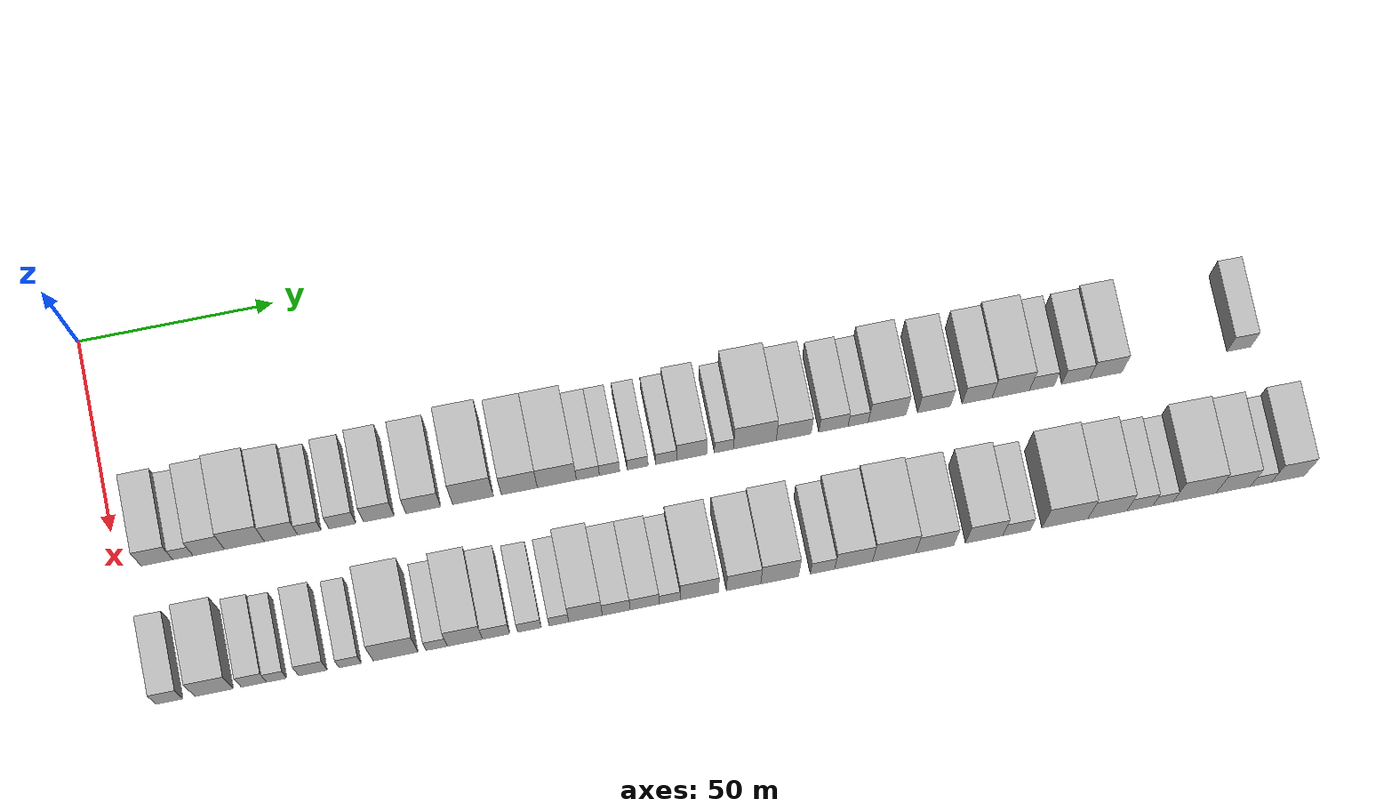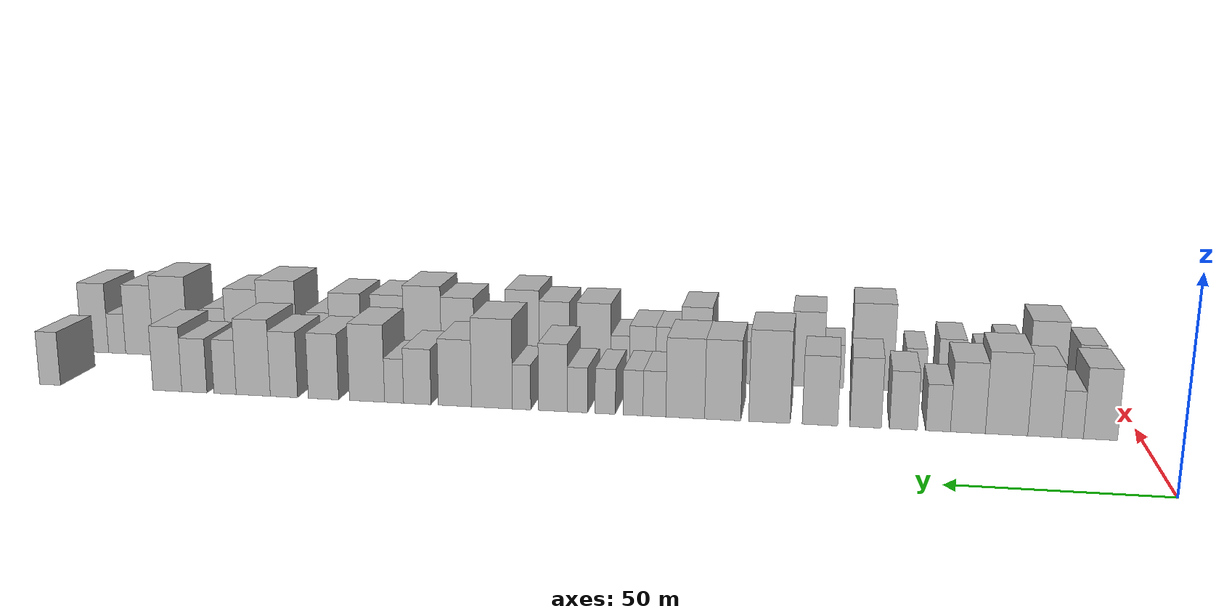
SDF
<sdf version="1.6">
 <world name="default">
  <model name="building_34">
   <static>1</static>
   <pose>50.0000 9.9899 0 0.000000 0.000000 0.000000</pose>
   <link name="link">
    <pose>0 0 9.00 0 0 0</pose>
    <collision name="collision"><geometry><box><size>20.0000 8.0147 18.0000</size></box></geometry></collision>
    <visual name="visual">
     <cast_shadows>0</cast_shadows>
     <geometry><box><size>20.0000 8.0147 18.0000</size></box></geometry>
     <material>
      <script>
       <uri>model://HANNAS_wall/materials/scripts</uri>
       <uri>model://HANNAS_wall/materials/textures</uri>
       <name>vrc/HANNAS_wall</name>
      </script>
     </material>
    </visual>
   </link>
  </model>
  <model name="building_35">
   <static>1</static>
   <pose>50.0000 16.5669 0 0.000000 0.000000 0.000000</pose>
   <link name="link">
    <pose>0 0 6.00 0 0 0</pose>
    <collision name="collision"><geometry><box><size>20.0000 5.1393 12.0000</size></box></geometry></collision>
    <visual name="visual">
     <cast_shadows>0</cast_shadows>
     <geometry><box><size>20.0000 5.1393 12.0000</size></box></geometry>
     <material>
      <script>
       <uri>model://HANNAS_wall/materials/scripts</uri>
       <uri>model://HANNAS_wall/materials/textures</uri>
       <name>vrc/HANNAS_wall</name>
      </script>
     </material>
    </visual>
   </link>
  </model>
  <model name="building_36">
   <static>1</static>
   <pose>50.0000 23.1288 0 0.000000 0.000000 0.000000</pose>
   <link name="link">
    <pose>0 0 9.00 0 0 0</pose>
    <collision name="collision"><geometry><box><size>20.0000 7.9845 18.0000</size></box></geometry></collision>
    <visual name="visual">
     <cast_shadows>0</cast_shadows>
     <geometry><box><size>20.0000 7.9845 18.0000</size></box></geometry>
     <material>
      <script>
       <uri>model://HANNAS_wall/materials/scripts</uri>
       <uri>model://HANNAS_wall/materials/textures</uri>
       <name>vrc/HANNAS_wall</name>
      </script>
     </material>
    </visual>
   </link>
  </model>
  <model name="building_37">
   <static>1</static>
   <pose>50.0000 32.1885 0 0.000000 0.000000 0.000000</pose>
   <link name="link">
    <pose>0 0 10.50 0 0 0</pose>
    <collision name="collision"><geometry><box><size>20.0000 10.1349 21.0000</size></box></geometry></collision>
    <visual name="visual">
     <cast_shadows>0</cast_shadows>
     <geometry><box><size>20.0000 10.1349 21.0000</size></box></geometry>
     <material>
      <script>
       <uri>model://HANNAS_wall/materials/scripts</uri>
       <uri>model://HANNAS_wall/materials/textures</uri>
       <name>vrc/HANNAS_wall</name>
      </script>
     </material>
    </visual>
   </link>
  </model>
  <model name="building_38">
   <static>1</static>
   <pose>50.0000 41.4720 0 0.000000 0.000000 0.000000</pose>
   <link name="link">
    <pose>0 0 9.00 0 0 0</pose>
    <collision name="collision"><geometry><box><size>20.0000 8.4321 18.0000</size></box></geometry></collision>
    <visual name="visual">
     <cast_shadows>0</cast_shadows>
     <geometry><box><size>20.0000 8.4321 18.0000</size></box></geometry>
     <material>
      <script>
       <uri>model://HANNAS_wall/materials/scripts</uri>
       <uri>model://HANNAS_wall/materials/textures</uri>
       <name>vrc/HANNAS_wall</name>
      </script>
     </material>
    </visual>
   </link>
  </model>
  <model name="building_39">
   <static>1</static>
   <pose>50.0000 48.6696 0 0.000000 0.000000 0.000000</pose>
   <link name="link">
    <pose>0 0 6.00 0 0 0</pose>
    <collision name="collision"><geometry><box><size>20.0000 5.9631 12.0000</size></box></geometry></collision>
    <visual name="visual">
     <cast_shadows>0</cast_shadows>
     <geometry><box><size>20.0000 5.9631 12.0000</size></box></geometry>
     <material>
      <script>
       <uri>model://HANNAS_wall/materials/scripts</uri>
       <uri>model://HANNAS_wall/materials/textures</uri>
       <name>vrc/HANNAS_wall</name>
      </script>
     </material>
    </visual>
   </link>
  </model>
  <model name="building_40">
   <static>1</static>
   <pose>50.0000 57.0762 0 0.000000 0.000000 0.000000</pose>
   <link name="link">
    <pose>0 0 7.50 0 0 0</pose>
    <collision name="collision"><geometry><box><size>20.0000 6.8501 15.0000</size></box></geometry></collision>
    <visual name="visual">
     <cast_shadows>0</cast_shadows>
     <geometry><box><size>20.0000 6.8501 15.0000</size></box></geometry>
     <material>
      <script>
       <uri>model://HANNAS_wall/materials/scripts</uri>
       <uri>model://HANNAS_wall/materials/textures</uri>
       <name>vrc/HANNAS_wall</name>
      </script>
     </material>
    </visual>
   </link>
  </model>
  <model name="building_41">
   <static>1</static>
   <pose>50.0000 66.3789 0 0.000000 0.000000 0.000000</pose>
   <link name="link">
    <pose>0 0 9.00 0 0 0</pose>
    <collision name="collision"><geometry><box><size>20.0000 7.7553 18.0000</size></box></geometry></collision>
    <visual name="visual">
     <cast_shadows>0</cast_shadows>
     <geometry><box><size>20.0000 7.7553 18.0000</size></box></geometry>
     <material>
      <script>
       <uri>model://HANNAS_wall/materials/scripts</uri>
       <uri>model://HANNAS_wall/materials/textures</uri>
       <name>vrc/HANNAS_wall</name>
      </script>
     </material>
    </visual>
   </link>
  </model>
  <model name="building_42">
   <static>1</static>
   <pose>50.0000 77.6829 0 0.000000 0.000000 0.000000</pose>
   <link name="link">
    <pose>0 0 9.00 0 0 0</pose>
    <collision name="collision"><geometry><box><size>20.0000 8.8527 18.0000</size></box></geometry></collision>
    <visual name="visual">
     <cast_shadows>0</cast_shadows>
     <geometry><box><size>20.0000 8.8527 18.0000</size></box></geometry>
     <material>
      <script>
       <uri>model://HANNAS_wall/materials/scripts</uri>
       <uri>model://HANNAS_wall/materials/textures</uri>
       <name>vrc/HANNAS_wall</name>
      </script>
     </material>
    </visual>
   </link>
  </model>
  <model name="building_43">
   <static>1</static>
   <pose>50.0000 90.3405 0 0.000000 0.000000 0.000000</pose>
   <link name="link">
    <pose>0 0 12.00 0 0 0</pose>
    <collision name="collision"><geometry><box><size>20.0000 10.4624 24.0000</size></box></geometry></collision>
    <visual name="visual">
     <cast_shadows>0</cast_shadows>
     <geometry><box><size>20.0000 10.4624 24.0000</size></box></geometry>
     <material>
      <script>
       <uri>model://HANNAS_wall/materials/scripts</uri>
       <uri>model://HANNAS_wall/materials/textures</uri>
       <name>vrc/HANNAS_wall</name>
      </script>
     </material>
    </visual>
   </link>
  </model>
  <model name="building_44">
   <static>1</static>
   <pose>50.0000 102.1634 0 0.000000 0.000000 0.000000</pose>
   <link name="link">
    <pose>0 0 10.50 0 0 0</pose>
    <collision name="collision"><geometry><box><size>20.0000 9.1836 21.0000</size></box></geometry></collision>
    <visual name="visual">
     <cast_shadows>0</cast_shadows>
     <geometry><box><size>20.0000 9.1836 21.0000</size></box></geometry>
     <material>
      <script>
       <uri>model://HANNAS_wall/materials/scripts</uri>
       <uri>model://HANNAS_wall/materials/textures</uri>
       <name>vrc/HANNAS_wall</name>
      </script>
     </material>
    </visual>
   </link>
  </model>
  <model name="building_45">
   <static>1</static>
   <pose>50.0000 111.7357 0 0.000000 0.000000 0.000000</pose>
   <link name="link">
    <pose>0 0 10.50 0 0 0</pose>
    <collision name="collision"><geometry><box><size>20.0000 9.9609 21.0000</size></box></geometry></collision>
    <visual name="visual">
     <cast_shadows>0</cast_shadows>
     <geometry><box><size>20.0000 9.9609 21.0000</size></box></geometry>
     <material>
      <script>
       <uri>model://HANNAS_wall/materials/scripts</uri>
       <uri>model://HANNAS_wall/materials/textures</uri>
       <name>vrc/HANNAS_wall</name>
      </script>
     </material>
    </visual>
   </link>
  </model>
  <model name="building_46">
   <static>1</static>
   <pose>50.0000 119.6706 0 0.000000 0.000000 0.000000</pose>
   <link name="link">
    <pose>0 0 6.00 0 0 0</pose>
    <collision name="collision"><geometry><box><size>20.0000 5.9090 12.0000</size></box></geometry></collision>
    <visual name="visual">
     <cast_shadows>0</cast_shadows>
     <geometry><box><size>20.0000 5.9090 12.0000</size></box></geometry>
     <material>
      <script>
       <uri>model://HANNAS_wall/materials/scripts</uri>
       <uri>model://HANNAS_wall/materials/textures</uri>
       <name>vrc/HANNAS_wall</name>
      </script>
     </material>
    </visual>
   </link>
  </model>
  <model name="building_47">
   <static>1</static>
   <pose>50.0000 125.2024 0 0.000000 0.000000 0.000000</pose>
   <link name="link">
    <pose>0 0 6.00 0 0 0</pose>
    <collision name="collision"><geometry><box><size>20.0000 5.1546 12.0000</size></box></geometry></collision>
    <visual name="visual">
     <cast_shadows>0</cast_shadows>
     <geometry><box><size>20.0000 5.1546 12.0000</size></box></geometry>
     <material>
      <script>
       <uri>model://HANNAS_wall/materials/scripts</uri>
       <uri>model://HANNAS_wall/materials/textures</uri>
       <name>vrc/HANNAS_wall</name>
      </script>
     </material>
    </visual>
   </link>
  </model>
  <model name="building_48">
   <static>1</static>
   <pose>50.0000 132.4311 0 0.000000 0.000000 0.000000</pose>
   <link name="link">
    <pose>0 0 6.00 0 0 0</pose>
    <collision name="collision"><geometry><box><size>20.0000 5.3028 12.0000</size></box></geometry></collision>
    <visual name="visual">
     <cast_shadows>0</cast_shadows>
     <geometry><box><size>20.0000 5.3028 12.0000</size></box></geometry>
     <material>
      <script>
       <uri>model://HANNAS_wall/materials/scripts</uri>
       <uri>model://HANNAS_wall/materials/textures</uri>
       <name>vrc/HANNAS_wall</name>
      </script>
     </material>
    </visual>
   </link>
  </model>
  <model name="building_49">
   <static>1</static>
   <pose>50.0000 139.7467 0 0.000000 0.000000 0.000000</pose>
   <link name="link">
    <pose>0 0 6.00 0 0 0</pose>
    <collision name="collision"><geometry><box><size>20.0000 5.3285 12.0000</size></box></geometry></collision>
    <visual name="visual">
     <cast_shadows>0</cast_shadows>
     <geometry><box><size>20.0000 5.3285 12.0000</size></box></geometry>
     <material>
      <script>
       <uri>model://HANNAS_wall/materials/scripts</uri>
       <uri>model://HANNAS_wall/materials/textures</uri>
       <name>vrc/HANNAS_wall</name>
      </script>
     </material>
    </visual>
   </link>
  </model>
  <model name="building_50">
   <static>1</static>
   <pose>50.0000 146.2451 0 0.000000 0.000000 0.000000</pose>
   <link name="link">
    <pose>0 0 9.00 0 0 0</pose>
    <collision name="collision"><geometry><box><size>20.0000 7.6682 18.0000</size></box></geometry></collision>
    <visual name="visual">
     <cast_shadows>0</cast_shadows>
     <geometry><box><size>20.0000 7.6682 18.0000</size></box></geometry>
     <material>
      <script>
       <uri>model://HANNAS_wall/materials/scripts</uri>
       <uri>model://HANNAS_wall/materials/textures</uri>
       <name>vrc/HANNAS_wall</name>
      </script>
     </material>
    </visual>
   </link>
  </model>
  <model name="building_51">
   <static>1</static>
   <pose>50.0000 154.5359 0 0.000000 0.000000 0.000000</pose>
   <link name="link">
    <pose>0 0 6.00 0 0 0</pose>
    <collision name="collision"><geometry><box><size>20.0000 4.9134 12.0000</size></box></geometry></collision>
    <visual name="visual">
     <cast_shadows>0</cast_shadows>
     <geometry><box><size>20.0000 4.9134 12.0000</size></box></geometry>
     <material>
      <script>
       <uri>model://HANNAS_wall/materials/scripts</uri>
       <uri>model://HANNAS_wall/materials/textures</uri>
       <name>vrc/HANNAS_wall</name>
      </script>
     </material>
    </visual>
   </link>
  </model>
  <model name="building_52">
   <static>1</static>
   <pose>50.0000 162.4656 0 0.000000 0.000000 0.000000</pose>
   <link name="link">
    <pose>0 0 12.00 0 0 0</pose>
    <collision name="collision"><geometry><box><size>20.0000 10.9461 24.0000</size></box></geometry></collision>
    <visual name="visual">
     <cast_shadows>0</cast_shadows>
     <geometry><box><size>20.0000 10.9461 24.0000</size></box></geometry>
     <material>
      <script>
       <uri>model://HANNAS_wall/materials/scripts</uri>
       <uri>model://HANNAS_wall/materials/textures</uri>
       <name>vrc/HANNAS_wall</name>
      </script>
     </material>
    </visual>
   </link>
  </model>
  <model name="building_53">
   <static>1</static>
   <pose>50.0000 172.4119 0 0.000000 0.000000 0.000000</pose>
   <link name="link">
    <pose>0 0 9.00 0 0 0</pose>
    <collision name="collision"><geometry><box><size>20.0000 8.9465 18.0000</size></box></geometry></collision>
    <visual name="visual">
     <cast_shadows>0</cast_shadows>
     <geometry><box><size>20.0000 8.9465 18.0000</size></box></geometry>
     <material>
      <script>
       <uri>model://HANNAS_wall/materials/scripts</uri>
       <uri>model://HANNAS_wall/materials/textures</uri>
       <name>vrc/HANNAS_wall</name>
      </script>
     </material>
    </visual>
   </link>
  </model>
  <model name="building_54">
   <static>1</static>
   <pose>50.0000 182.6342 0 0.000000 0.000000 0.000000</pose>
   <link name="link">
    <pose>0 0 7.50 0 0 0</pose>
    <collision name="collision"><geometry><box><size>20.0000 7.4980 15.0000</size></box></geometry></collision>
    <visual name="visual">
     <cast_shadows>0</cast_shadows>
     <geometry><box><size>20.0000 7.4980 15.0000</size></box></geometry>
     <material>
      <script>
       <uri>model://HANNAS_wall/materials/scripts</uri>
       <uri>model://HANNAS_wall/materials/textures</uri>
       <name>vrc/HANNAS_wall</name>
      </script>
     </material>
    </visual>
   </link>
  </model>
  <model name="building_55">
   <static>1</static>
   <pose>50.0000 188.9912 0 0.000000 0.000000 0.000000</pose>
   <link name="link">
    <pose>0 0 6.00 0 0 0</pose>
    <collision name="collision"><geometry><box><size>20.0000 5.2160 12.0000</size></box></geometry></collision>
    <visual name="visual">
     <cast_shadows>0</cast_shadows>
     <geometry><box><size>20.0000 5.2160 12.0000</size></box></geometry>
     <material>
      <script>
       <uri>model://HANNAS_wall/materials/scripts</uri>
       <uri>model://HANNAS_wall/materials/textures</uri>
       <name>vrc/HANNAS_wall</name>
      </script>
     </material>
    </visual>
   </link>
  </model>
  <model name="building_56">
   <static>1</static>
   <pose>50.0000 196.4564 0 0.000000 0.000000 0.000000</pose>
   <link name="link">
    <pose>0 0 10.50 0 0 0</pose>
    <collision name="collision"><geometry><box><size>20.0000 9.7144 21.0000</size></box></geometry></collision>
    <visual name="visual">
     <cast_shadows>0</cast_shadows>
     <geometry><box><size>20.0000 9.7144 21.0000</size></box></geometry>
     <material>
      <script>
       <uri>model://HANNAS_wall/materials/scripts</uri>
       <uri>model://HANNAS_wall/materials/textures</uri>
       <name>vrc/HANNAS_wall</name>
      </script>
     </material>
    </visual>
   </link>
  </model>
  <model name="building_57">
   <static>1</static>
   <pose>50.0000 208.5460 0 0.000000 0.000000 0.000000</pose>
   <link name="link">
    <pose>0 0 9.00 0 0 0</pose>
    <collision name="collision"><geometry><box><size>20.0000 8.4648 18.0000</size></box></geometry></collision>
    <visual name="visual">
     <cast_shadows>0</cast_shadows>
     <geometry><box><size>20.0000 8.4648 18.0000</size></box></geometry>
     <material>
      <script>
       <uri>model://HANNAS_wall/materials/scripts</uri>
       <uri>model://HANNAS_wall/materials/textures</uri>
       <name>vrc/HANNAS_wall</name>
      </script>
     </material>
    </visual>
   </link>
  </model>
  <model name="building_58">
   <static>1</static>
   <pose>50.0000 219.6300 0 0.000000 0.000000 0.000000</pose>
   <link name="link">
    <pose>0 0 9.00 0 0 0</pose>
    <collision name="collision"><geometry><box><size>20.0000 7.7032 18.0000</size></box></geometry></collision>
    <visual name="visual">
     <cast_shadows>0</cast_shadows>
     <geometry><box><size>20.0000 7.7032 18.0000</size></box></geometry>
     <material>
      <script>
       <uri>model://HANNAS_wall/materials/scripts</uri>
       <uri>model://HANNAS_wall/materials/textures</uri>
       <name>vrc/HANNAS_wall</name>
      </script>
     </material>
    </visual>
   </link>
  </model>
  <model name="building_59">
   <static>1</static>
   <pose>50.0000 228.3242 0 0.000000 0.000000 0.000000</pose>
   <link name="link">
    <pose>0 0 10.50 0 0 0</pose>
    <collision name="collision"><geometry><box><size>20.0000 9.6851 21.0000</size></box></geometry></collision>
    <visual name="visual">
     <cast_shadows>0</cast_shadows>
     <geometry><box><size>20.0000 9.6851 21.0000</size></box></geometry>
     <material>
      <script>
       <uri>model://HANNAS_wall/materials/scripts</uri>
       <uri>model://HANNAS_wall/materials/textures</uri>
       <name>vrc/HANNAS_wall</name>
      </script>
     </material>
    </visual>
   </link>
  </model>
  <model name="building_60">
   <static>1</static>
   <pose>50.0000 236.3449 0 0.000000 0.000000 0.000000</pose>
   <link name="link">
    <pose>0 0 7.50 0 0 0</pose>
    <collision name="collision"><geometry><box><size>20.0000 6.3562 15.0000</size></box></geometry></collision>
    <visual name="visual">
     <cast_shadows>0</cast_shadows>
     <geometry><box><size>20.0000 6.3562 15.0000</size></box></geometry>
     <material>
      <script>
       <uri>model://HANNAS_wall/materials/scripts</uri>
       <uri>model://HANNAS_wall/materials/textures</uri>
       <name>vrc/HANNAS_wall</name>
      </script>
     </material>
    </visual>
   </link>
  </model>
  <model name="building_61">
   <static>1</static>
   <pose>50.0000 245.1395 0 0.000000 0.000000 0.000000</pose>
   <link name="link">
    <pose>0 0 7.50 0 0 0</pose>
    <collision name="collision"><geometry><box><size>20.0000 7.2330 15.0000</size></box></geometry></collision>
    <visual name="visual">
     <cast_shadows>0</cast_shadows>
     <geometry><box><size>20.0000 7.2330 15.0000</size></box></geometry>
     <material>
      <script>
       <uri>model://HANNAS_wall/materials/scripts</uri>
       <uri>model://HANNAS_wall/materials/textures</uri>
       <name>vrc/HANNAS_wall</name>
      </script>
     </material>
    </visual>
   </link>
  </model>
  <model name="building_62">
   <static>1</static>
   <pose>50.0000 252.9208 0 0.000000 0.000000 0.000000</pose>
   <link name="link">
    <pose>0 0 9.00 0 0 0</pose>
    <collision name="collision"><geometry><box><size>20.0000 8.3294 18.0000</size></box></geometry></collision>
    <visual name="visual">
     <cast_shadows>0</cast_shadows>
     <geometry><box><size>20.0000 8.3294 18.0000</size></box></geometry>
     <material>
      <script>
       <uri>model://HANNAS_wall/materials/scripts</uri>
       <uri>model://HANNAS_wall/materials/textures</uri>
       <name>vrc/HANNAS_wall</name>
      </script>
     </material>
    </visual>
   </link>
  </model>
  <model name="building_63">
   <static>1</static>
   <pose>50.0000 287.4085 0 0.000000 0.000000 0.000000</pose>
   <link name="link">
    <pose>0 0 7.50 0 0 0</pose>
    <collision name="collision"><geometry><box><size>20.0000 6.2154 15.0000</size></box></geometry></collision>
    <visual name="visual">
     <cast_shadows>0</cast_shadows>
     <geometry><box><size>20.0000 6.2154 15.0000</size></box></geometry>
     <material>
      <script>
       <uri>model://HANNAS_wall/materials/scripts</uri>
       <uri>model://HANNAS_wall/materials/textures</uri>
       <name>vrc/HANNAS_wall</name>
      </script>
     </material>
    </visual>
   </link>
  </model>
  <model name="building_93">
   <static>1</static>
   <pose>85.0000 7.1830 0 0.000000 0.000000 0.000000</pose>
   <link name="link">
    <pose>0 0 7.50 0 0 0</pose>
    <collision name="collision"><geometry><box><size>20.0000 6.7527 15.0000</size></box></geometry></collision>
    <visual name="visual">
     <cast_shadows>0</cast_shadows>
     <geometry><box><size>20.0000 6.7527 15.0000</size></box></geometry>
     <material>
      <script>
       <uri>model://HANNAS_wall/materials/scripts</uri>
       <uri>model://HANNAS_wall/materials/textures</uri>
       <name>vrc/HANNAS_wall</name>
      </script>
     </material>
    </visual>
   </link>
  </model>
  <model name="building_94">
   <static>1</static>
   <pose>85.0000 18.4018 0 0.000000 0.000000 0.000000</pose>
   <link name="link">
    <pose>0 0 10.50 0 0 0</pose>
    <collision name="collision"><geometry><box><size>20.0000 9.6849 21.0000</size></box></geometry></collision>
    <visual name="visual">
     <cast_shadows>0</cast_shadows>
     <geometry><box><size>20.0000 9.6849 21.0000</size></box></geometry>
     <material>
      <script>
       <uri>model://HANNAS_wall/materials/scripts</uri>
       <uri>model://HANNAS_wall/materials/textures</uri>
       <name>vrc/HANNAS_wall</name>
      </script>
     </material>
    </visual>
   </link>
  </model>
  <model name="building_95">
   <static>1</static>
   <pose>85.0000 28.4478 0 0.000000 0.000000 0.000000</pose>
   <link name="link">
    <pose>0 0 7.50 0 0 0</pose>
    <collision name="collision"><geometry><box><size>20.0000 6.4071 15.0000</size></box></geometry></collision>
    <visual name="visual">
     <cast_shadows>0</cast_shadows>
     <geometry><box><size>20.0000 6.4071 15.0000</size></box></geometry>
     <material>
      <script>
       <uri>model://HANNAS_wall/materials/scripts</uri>
       <uri>model://HANNAS_wall/materials/textures</uri>
       <name>vrc/HANNAS_wall</name>
      </script>
     </material>
    </visual>
   </link>
  </model>
  <model name="building_96">
   <static>1</static>
   <pose>85.0000 34.1834 0 0.000000 0.000000 0.000000</pose>
   <link name="link">
    <pose>0 0 6.00 0 0 0</pose>
    <collision name="collision"><geometry><box><size>20.0000 5.0641 12.0000</size></box></geometry></collision>
    <visual name="visual">
     <cast_shadows>0</cast_shadows>
     <geometry><box><size>20.0000 5.0641 12.0000</size></box></geometry>
     <material>
      <script>
       <uri>model://HANNAS_wall/materials/scripts</uri>
       <uri>model://HANNAS_wall/materials/textures</uri>
       <name>vrc/HANNAS_wall</name>
      </script>
     </material>
    </visual>
   </link>
  </model>
  <model name="building_97">
   <static>1</static>
   <pose>85.0000 43.3047 0 0.000000 0.000000 0.000000</pose>
   <link name="link">
    <pose>0 0 7.50 0 0 0</pose>
    <collision name="collision"><geometry><box><size>20.0000 7.1784 15.0000</size></box></geometry></collision>
    <visual name="visual">
     <cast_shadows>0</cast_shadows>
     <geometry><box><size>20.0000 7.1784 15.0000</size></box></geometry>
     <material>
      <script>
       <uri>model://HANNAS_wall/materials/scripts</uri>
       <uri>model://HANNAS_wall/materials/textures</uri>
       <name>vrc/HANNAS_wall</name>
      </script>
     </material>
    </visual>
   </link>
  </model>
  <model name="building_98">
   <static>1</static>
   <pose>85.0000 52.6967 0 0.000000 0.000000 0.000000</pose>
   <link name="link">
    <pose>0 0 6.00 0 0 0</pose>
    <collision name="collision"><geometry><box><size>20.0000 5.6056 12.0000</size></box></geometry></collision>
    <visual name="visual">
     <cast_shadows>0</cast_shadows>
     <geometry><box><size>20.0000 5.6056 12.0000</size></box></geometry>
     <material>
      <script>
       <uri>model://HANNAS_wall/materials/scripts</uri>
       <uri>model://HANNAS_wall/materials/textures</uri>
       <name>vrc/HANNAS_wall</name>
      </script>
     </material>
    </visual>
   </link>
  </model>
  <model name="building_99">
   <static>1</static>
   <pose>85.0000 64.1671 0 0.000000 0.000000 0.000000</pose>
   <link name="link">
    <pose>0 0 12.00 0 0 0</pose>
    <collision name="collision"><geometry><box><size>20.0000 11.3353 24.0000</size></box></geometry></collision>
    <visual name="visual">
     <cast_shadows>0</cast_shadows>
     <geometry><box><size>20.0000 11.3353 24.0000</size></box></geometry>
     <material>
      <script>
       <uri>model://HANNAS_wall/materials/scripts</uri>
       <uri>model://HANNAS_wall/materials/textures</uri>
       <name>vrc/HANNAS_wall</name>
      </script>
     </material>
    </visual>
   </link>
  </model>
  <model name="building_100">
   <static>1</static>
   <pose>85.0000 74.5300 0 0.000000 0.000000 0.000000</pose>
   <link name="link">
    <pose>0 0 6.00 0 0 0</pose>
    <collision name="collision"><geometry><box><size>20.0000 5.3905 12.0000</size></box></geometry></collision>
    <visual name="visual">
     <cast_shadows>0</cast_shadows>
     <geometry><box><size>20.0000 5.3905 12.0000</size></box></geometry>
     <material>
      <script>
       <uri>model://HANNAS_wall/materials/scripts</uri>
       <uri>model://HANNAS_wall/materials/textures</uri>
       <name>vrc/HANNAS_wall</name>
      </script>
     </material>
    </visual>
   </link>
  </model>
  <model name="building_101">
   <static>1</static>
   <pose>85.0000 81.6806 0 0.000000 0.000000 0.000000</pose>
   <link name="link">
    <pose>0 0 10.50 0 0 0</pose>
    <collision name="collision"><geometry><box><size>20.0000 8.9108 21.0000</size></box></geometry></collision>
    <visual name="visual">
     <cast_shadows>0</cast_shadows>
     <geometry><box><size>20.0000 8.9108 21.0000</size></box></geometry>
     <material>
      <script>
       <uri>model://HANNAS_wall/materials/scripts</uri>
       <uri>model://HANNAS_wall/materials/textures</uri>
       <name>vrc/HANNAS_wall</name>
      </script>
     </material>
    </visual>
   </link>
  </model>
  <model name="building_102">
   <static>1</static>
   <pose>85.0000 89.6046 0 0.000000 0.000000 0.000000</pose>
   <link name="link">
    <pose>0 0 7.50 0 0 0</pose>
    <collision name="collision"><geometry><box><size>20.0000 6.9372 15.0000</size></box></geometry></collision>
    <visual name="visual">
     <cast_shadows>0</cast_shadows>
     <geometry><box><size>20.0000 6.9372 15.0000</size></box></geometry>
     <material>
      <script>
       <uri>model://HANNAS_wall/materials/scripts</uri>
       <uri>model://HANNAS_wall/materials/textures</uri>
       <name>vrc/HANNAS_wall</name>
      </script>
     </material>
    </visual>
   </link>
  </model>
  <model name="building_103">
   <static>1</static>
   <pose>85.0000 98.0646 0 0.000000 0.000000 0.000000</pose>
   <link name="link">
    <pose>0 0 6.00 0 0 0</pose>
    <collision name="collision"><geometry><box><size>20.0000 5.9828 12.0000</size></box></geometry></collision>
    <visual name="visual">
     <cast_shadows>0</cast_shadows>
     <geometry><box><size>20.0000 5.9828 12.0000</size></box></geometry>
     <material>
      <script>
       <uri>model://HANNAS_wall/materials/scripts</uri>
       <uri>model://HANNAS_wall/materials/textures</uri>
       <name>vrc/HANNAS_wall</name>
      </script>
     </material>
    </visual>
   </link>
  </model>
  <model name="building_104">
   <static>1</static>
   <pose>85.0000 105.5324 0 0.000000 0.000000 0.000000</pose>
   <link name="link">
    <pose>0 0 6.00 0 0 0</pose>
    <collision name="collision"><geometry><box><size>20.0000 4.9528 12.0000</size></box></geometry></collision>
    <visual name="visual">
     <cast_shadows>0</cast_shadows>
     <geometry><box><size>20.0000 4.9528 12.0000</size></box></geometry>
     <material>
      <script>
       <uri>model://HANNAS_wall/materials/scripts</uri>
       <uri>model://HANNAS_wall/materials/textures</uri>
       <name>vrc/HANNAS_wall</name>
      </script>
     </material>
    </visual>
   </link>
  </model>
  <model name="building_105">
   <static>1</static>
   <pose>85.0000 112.2563 0 0.000000 0.000000 0.000000</pose>
   <link name="link">
    <pose>0 0 10.50 0 0 0</pose>
    <collision name="collision"><geometry><box><size>20.0000 8.4949 21.0000</size></box></geometry></collision>
    <visual name="visual">
     <cast_shadows>0</cast_shadows>
     <geometry><box><size>20.0000 8.4949 21.0000</size></box></geometry>
     <material>
      <script>
       <uri>model://HANNAS_wall/materials/scripts</uri>
       <uri>model://HANNAS_wall/materials/textures</uri>
       <name>vrc/HANNAS_wall</name>
      </script>
     </material>
    </visual>
   </link>
  </model>
  <model name="building_106">
   <static>1</static>
   <pose>85.0000 120.0240 0 0.000000 0.000000 0.000000</pose>
   <link name="link">
    <pose>0 0 7.50 0 0 0</pose>
    <collision name="collision"><geometry><box><size>20.0000 7.0404 15.0000</size></box></geometry></collision>
    <visual name="visual">
     <cast_shadows>0</cast_shadows>
     <geometry><box><size>20.0000 7.0404 15.0000</size></box></geometry>
     <material>
      <script>
       <uri>model://HANNAS_wall/materials/scripts</uri>
       <uri>model://HANNAS_wall/materials/textures</uri>
       <name>vrc/HANNAS_wall</name>
      </script>
     </material>
    </visual>
   </link>
  </model>
  <model name="building_107">
   <static>1</static>
   <pose>85.0000 127.2532 0 0.000000 0.000000 0.000000</pose>
   <link name="link">
    <pose>0 0 7.50 0 0 0</pose>
    <collision name="collision"><geometry><box><size>20.0000 7.4180 15.0000</size></box></geometry></collision>
    <visual name="visual">
     <cast_shadows>0</cast_shadows>
     <geometry><box><size>20.0000 7.4180 15.0000</size></box></geometry>
     <material>
      <script>
       <uri>model://HANNAS_wall/materials/scripts</uri>
       <uri>model://HANNAS_wall/materials/textures</uri>
       <name>vrc/HANNAS_wall</name>
      </script>
     </material>
    </visual>
   </link>
  </model>
  <model name="building_108">
   <static>1</static>
   <pose>85.0000 133.6136 0 0.000000 0.000000 0.000000</pose>
   <link name="link">
    <pose>0 0 6.00 0 0 0</pose>
    <collision name="collision"><geometry><box><size>20.0000 5.3028 12.0000</size></box></geometry></collision>
    <visual name="visual">
     <cast_shadows>0</cast_shadows>
     <geometry><box><size>20.0000 5.3028 12.0000</size></box></geometry>
     <material>
      <script>
       <uri>model://HANNAS_wall/materials/scripts</uri>
       <uri>model://HANNAS_wall/materials/textures</uri>
       <name>vrc/HANNAS_wall</name>
      </script>
     </material>
    </visual>
   </link>
  </model>
  <model name="building_109">
   <static>1</static>
   <pose>85.0000 141.1484 0 0.000000 0.000000 0.000000</pose>
   <link name="link">
    <pose>0 0 10.50 0 0 0</pose>
    <collision name="collision"><geometry><box><size>20.0000 9.7668 21.0000</size></box></geometry></collision>
    <visual name="visual">
     <cast_shadows>0</cast_shadows>
     <geometry><box><size>20.0000 9.7668 21.0000</size></box></geometry>
     <material>
      <script>
       <uri>model://HANNAS_wall/materials/scripts</uri>
       <uri>model://HANNAS_wall/materials/textures</uri>
       <name>vrc/HANNAS_wall</name>
      </script>
     </material>
    </visual>
   </link>
  </model>
  <model name="building_110">
   <static>1</static>
   <pose>85.0000 152.4005 0 0.000000 0.000000 0.000000</pose>
   <link name="link">
    <pose>0 0 10.50 0 0 0</pose>
    <collision name="collision"><geometry><box><size>20.0000 8.7373 21.0000</size></box></geometry></collision>
    <visual name="visual">
     <cast_shadows>0</cast_shadows>
     <geometry><box><size>20.0000 8.7373 21.0000</size></box></geometry>
     <material>
      <script>
       <uri>model://HANNAS_wall/materials/scripts</uri>
       <uri>model://HANNAS_wall/materials/textures</uri>
       <name>vrc/HANNAS_wall</name>
      </script>
     </material>
    </visual>
   </link>
  </model>
  <model name="building_111">
   <static>1</static>
   <pose>85.0000 161.5808 0 0.000000 0.000000 0.000000</pose>
   <link name="link">
    <pose>0 0 12.00 0 0 0</pose>
    <collision name="collision"><geometry><box><size>20.0000 9.6233 24.0000</size></box></geometry></collision>
    <visual name="visual">
     <cast_shadows>0</cast_shadows>
     <geometry><box><size>20.0000 9.6233 24.0000</size></box></geometry>
     <material>
      <script>
       <uri>model://HANNAS_wall/materials/scripts</uri>
       <uri>model://HANNAS_wall/materials/textures</uri>
       <name>vrc/HANNAS_wall</name>
      </script>
     </material>
    </visual>
   </link>
  </model>
  <model name="building_112">
   <static>1</static>
   <pose>85.0000 172.5018 0 0.000000 0.000000 0.000000</pose>
   <link name="link">
    <pose>0 0 7.50 0 0 0</pose>
    <collision name="collision"><geometry><box><size>20.0000 6.2185 15.0000</size></box></geometry></collision>
    <visual name="visual">
     <cast_shadows>0</cast_shadows>
     <geometry><box><size>20.0000 6.2185 15.0000</size></box></geometry>
     <material>
      <script>
       <uri>model://HANNAS_wall/materials/scripts</uri>
       <uri>model://HANNAS_wall/materials/textures</uri>
       <name>vrc/HANNAS_wall</name>
      </script>
     </material>
    </visual>
   </link>
  </model>
  <model name="building_113">
   <static>1</static>
   <pose>85.0000 180.4228 0 0.000000 0.000000 0.000000</pose>
   <link name="link">
    <pose>0 0 10.50 0 0 0</pose>
    <collision name="collision"><geometry><box><size>20.0000 9.6235 21.0000</size></box></geometry></collision>
    <visual name="visual">
     <cast_shadows>0</cast_shadows>
     <geometry><box><size>20.0000 9.6235 21.0000</size></box></geometry>
     <material>
      <script>
       <uri>model://HANNAS_wall/materials/scripts</uri>
       <uri>model://HANNAS_wall/materials/textures</uri>
       <name>vrc/HANNAS_wall</name>
      </script>
     </material>
    </visual>
   </link>
  </model>
  <model name="building_114">
   <static>1</static>
   <pose>85.0000 190.7610 0 0.000000 0.000000 0.000000</pose>
   <link name="link">
    <pose>0 0 12.00 0 0 0</pose>
    <collision name="collision"><geometry><box><size>20.0000 11.0530 24.0000</size></box></geometry></collision>
    <visual name="visual">
     <cast_shadows>0</cast_shadows>
     <geometry><box><size>20.0000 11.0530 24.0000</size></box></geometry>
     <material>
      <script>
       <uri>model://HANNAS_wall/materials/scripts</uri>
       <uri>model://HANNAS_wall/materials/textures</uri>
       <name>vrc/HANNAS_wall</name>
      </script>
     </material>
    </visual>
   </link>
  </model>
  <model name="building_115">
   <static>1</static>
   <pose>85.0000 201.1646 0 0.000000 0.000000 0.000000</pose>
   <link name="link">
    <pose>0 0 10.50 0 0 0</pose>
    <collision name="collision"><geometry><box><size>20.0000 9.7543 21.0000</size></box></geometry></collision>
    <visual name="visual">
     <cast_shadows>0</cast_shadows>
     <geometry><box><size>20.0000 9.7543 21.0000</size></box></geometry>
     <material>
      <script>
       <uri>model://HANNAS_wall/materials/scripts</uri>
       <uri>model://HANNAS_wall/materials/textures</uri>
       <name>vrc/HANNAS_wall</name>
      </script>
     </material>
    </visual>
   </link>
  </model>
  <model name="building_116">
   <static>1</static>
   <pose>85.0000 213.8004 0 0.000000 0.000000 0.000000</pose>
   <link name="link">
    <pose>0 0 10.50 0 0 0</pose>
    <collision name="collision"><geometry><box><size>20.0000 9.5171 21.0000</size></box></geometry></collision>
    <visual name="visual">
     <cast_shadows>0</cast_shadows>
     <geometry><box><size>20.0000 9.5171 21.0000</size></box></geometry>
     <material>
      <script>
       <uri>model://HANNAS_wall/materials/scripts</uri>
       <uri>model://HANNAS_wall/materials/textures</uri>
       <name>vrc/HANNAS_wall</name>
      </script>
     </material>
    </visual>
   </link>
  </model>
  <model name="building_117">
   <static>1</static>
   <pose>85.0000 222.0767 0 0.000000 0.000000 0.000000</pose>
   <link name="link">
    <pose>0 0 7.50 0 0 0</pose>
    <collision name="collision"><geometry><box><size>20.0000 7.0354 15.0000</size></box></geometry></collision>
    <visual name="visual">
     <cast_shadows>0</cast_shadows>
     <geometry><box><size>20.0000 7.0354 15.0000</size></box></geometry>
     <material>
      <script>
       <uri>model://HANNAS_wall/materials/scripts</uri>
       <uri>model://HANNAS_wall/materials/textures</uri>
       <name>vrc/HANNAS_wall</name>
      </script>
     </material>
    </visual>
   </link>
  </model>
  <model name="building_118">
   <static>1</static>
   <pose>85.0000 234.5065 0 0.000000 0.000000 0.000000</pose>
   <link name="link">
    <pose>0 0 12.00 0 0 0</pose>
    <collision name="collision"><geometry><box><size>20.0000 11.8243 24.0000</size></box></geometry></collision>
    <visual name="visual">
     <cast_shadows>0</cast_shadows>
     <geometry><box><size>20.0000 11.8243 24.0000</size></box></geometry>
     <material>
      <script>
       <uri>model://HANNAS_wall/materials/scripts</uri>
       <uri>model://HANNAS_wall/materials/textures</uri>
       <name>vrc/HANNAS_wall</name>
      </script>
     </material>
    </visual>
   </link>
  </model>
  <model name="building_119">
   <static>1</static>
   <pose>85.0000 245.4234 0 0.000000 0.000000 0.000000</pose>
   <link name="link">
    <pose>0 0 10.50 0 0 0</pose>
    <collision name="collision"><geometry><box><size>20.0000 10.0094 21.0000</size></box></geometry></collision>
    <visual name="visual">
     <cast_shadows>0</cast_shadows>
     <geometry><box><size>20.0000 10.0094 21.0000</size></box></geometry>
     <material>
      <script>
       <uri>model://HANNAS_wall/materials/scripts</uri>
       <uri>model://HANNAS_wall/materials/textures</uri>
       <name>vrc/HANNAS_wall</name>
      </script>
     </material>
    </visual>
   </link>
  </model>
  <model name="building_120">
   <static>1</static>
   <pose>85.0000 253.7592 0 0.000000 0.000000 0.000000</pose>
   <link name="link">
    <pose>0 0 7.50 0 0 0</pose>
    <collision name="collision"><geometry><box><size>20.0000 6.6623 15.0000</size></box></geometry></collision>
    <visual name="visual">
     <cast_shadows>0</cast_shadows>
     <geometry><box><size>20.0000 6.6623 15.0000</size></box></geometry>
     <material>
      <script>
       <uri>model://HANNAS_wall/materials/scripts</uri>
       <uri>model://HANNAS_wall/materials/textures</uri>
       <name>vrc/HANNAS_wall</name>
      </script>
     </material>
    </visual>
   </link>
  </model>
  <model name="building_121">
   <static>1</static>
   <pose>85.0000 259.7322 0 0.000000 0.000000 0.000000</pose>
   <link name="link">
    <pose>0 0 6.00 0 0 0</pose>
    <collision name="collision"><geometry><box><size>20.0000 5.2838 12.0000</size></box></geometry></collision>
    <visual name="visual">
     <cast_shadows>0</cast_shadows>
     <geometry><box><size>20.0000 5.2838 12.0000</size></box></geometry>
     <material>
      <script>
       <uri>model://HANNAS_wall/materials/scripts</uri>
       <uri>model://HANNAS_wall/materials/textures</uri>
       <name>vrc/HANNAS_wall</name>
      </script>
     </material>
    </visual>
   </link>
  </model>
  <model name="building_122">
   <static>1</static>
   <pose>85.0000 267.8680 0 0.000000 0.000000 0.000000</pose>
   <link name="link">
    <pose>0 0 12.00 0 0 0</pose>
    <collision name="collision"><geometry><box><size>20.0000 10.9877 24.0000</size></box></geometry></collision>
    <visual name="visual">
     <cast_shadows>0</cast_shadows>
     <geometry><box><size>20.0000 10.9877 24.0000</size></box></geometry>
     <material>
      <script>
       <uri>model://HANNAS_wall/materials/scripts</uri>
       <uri>model://HANNAS_wall/materials/textures</uri>
       <name>vrc/HANNAS_wall</name>
      </script>
     </material>
    </visual>
   </link>
  </model>
  <model name="building_123">
   <static>1</static>
   <pose>85.0000 277.7871 0 0.000000 0.000000 0.000000</pose>
   <link name="link">
    <pose>0 0 10.50 0 0 0</pose>
    <collision name="collision"><geometry><box><size>20.0000 8.8504 21.0000</size></box></geometry></collision>
    <visual name="visual">
     <cast_shadows>0</cast_shadows>
     <geometry><box><size>20.0000 8.8504 21.0000</size></box></geometry>
     <material>
      <script>
       <uri>model://HANNAS_wall/materials/scripts</uri>
       <uri>model://HANNAS_wall/materials/textures</uri>
       <name>vrc/HANNAS_wall</name>
      </script>
     </material>
    </visual>
   </link>
  </model>
  <model name="building_124">
   <static>1</static>
   <pose>85.0000 284.9264 0 0.000000 0.000000 0.000000</pose>
   <link name="link">
    <pose>0 0 6.00 0 0 0</pose>
    <collision name="collision"><geometry><box><size>20.0000 5.4282 12.0000</size></box></geometry></collision>
    <visual name="visual">
     <cast_shadows>0</cast_shadows>
     <geometry><box><size>20.0000 5.4282 12.0000</size></box></geometry>
     <material>
      <script>
       <uri>model://HANNAS_wall/materials/scripts</uri>
       <uri>model://HANNAS_wall/materials/textures</uri>
       <name>vrc/HANNAS_wall</name>
      </script>
     </material>
    </visual>
   </link>
  </model>
  <model name="building_125">
   <static>1</static>
   <pose>85.0000 291.9044 0 0.000000 0.000000 0.000000</pose>
   <link name="link">
    <pose>0 0 10.50 0 0 0</pose>
    <collision name="collision"><geometry><box><size>20.0000 8.5278 21.0000</size></box></geometry></collision>
    <visual name="visual">
     <cast_shadows>0</cast_shadows>
     <geometry><box><size>20.0000 8.5278 21.0000</size></box></geometry>
     <material>
      <script>
       <uri>model://HANNAS_wall/materials/scripts</uri>
       <uri>model://HANNAS_wall/materials/textures</uri>
       <name>vrc/HANNAS_wall</name>
      </script>
     </material>
    </visual>
   </link>
  </model>
 </world>
</sdf>
